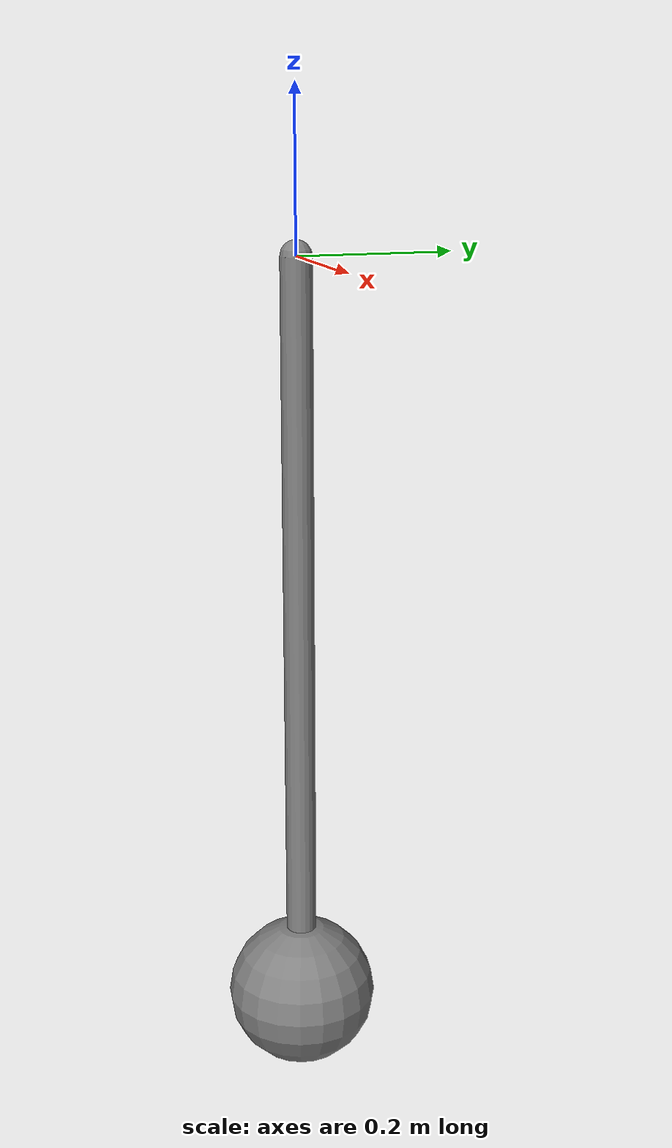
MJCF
<mujoco>
    <option gravity="0 0 -9.81"/>
    <worldbody>
        <body name="pole" pos="0 0 0">
            <joint name="hinge" type="hinge" axis="0 1 0" pos="0 0 0"/>
            <geom name="pole" type="capsule" fromto="0 0 0 0 0 -1" size="0.02" mass="1"/>
            <geom name="bob" type="sphere" pos="0 0 -1" size="0.1" mass="1"/>
        </body>
    </worldbody>
    <actuator>
        <motor name="torque" joint="hinge" gear="1" ctrllimited="true" ctrlrange="-100 100"/>
    </actuator>
</mujoco>
